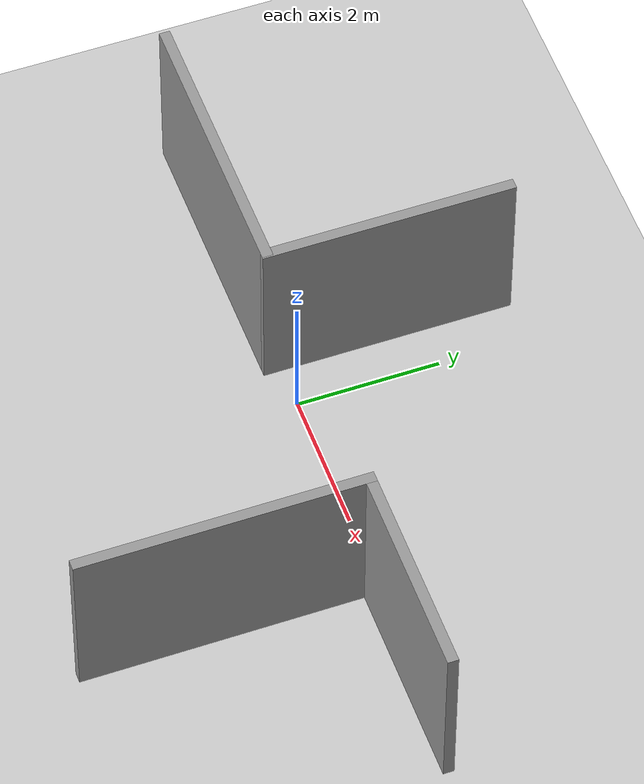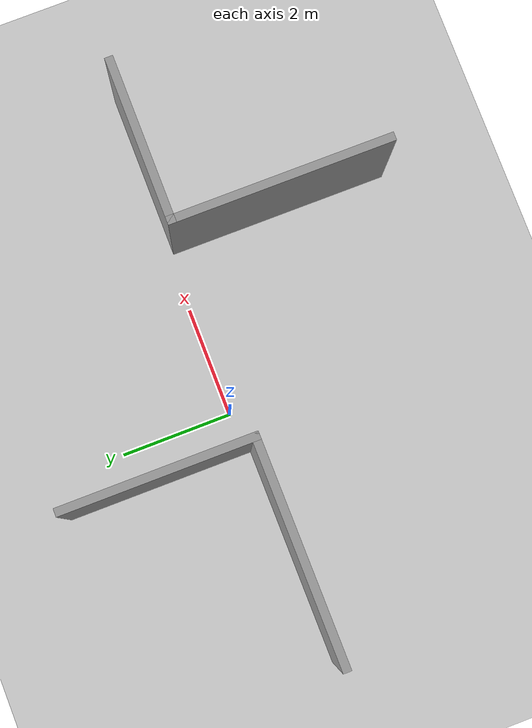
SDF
<sdf version="1.6">
 <world name="default">
  <physics name="default_physics" default="0" type="ode">
   <ode>
    <solver>
     <type>quick</type>
     <iters>100</iters>
     <sor>1</sor>
     <use_dynamic_moi_rescaling>0</use_dynamic_moi_rescaling>
    </solver>
    <constraints>
     <cfm>0</cfm>
     <erp>0.9</erp>
     <contact_max_correcting_vel>0.1</contact_max_correcting_vel>
     <contact_surface_layer>0</contact_surface_layer>
    </constraints>
   </ode>
   <real_time_update_rate>1000</real_time_update_rate>
   <max_step_size>0.001</max_step_size>
   <real_time_factor>1</real_time_factor>
  </physics>
  <scene>
   <sky><clouds><speed>12</speed></clouds></sky>
   <ambient>0.4 0.4 0.4 1</ambient>
   <background>0.25 0.25 0.25 1</background>
   <shadows>1</shadows>
  </scene>
  <model name="ground_plane">
   <static>1</static>
   <link name="link">
    <collision name="collision">
     <geometry><plane><normal>0 0 1</normal><size>100 100</size></plane></geometry>
     <surface>
      <contact><collide_bitmask>65535</collide_bitmask></contact>
      <friction><ode><mu>100</mu><mu2>50</mu2></ode></friction>
     </surface>
    </collision>
    <visual name="visual">
     <cast_shadows>0</cast_shadows>
     <geometry><plane><normal>0 0 1</normal><size>100 100</size></plane></geometry>
     <material>
      <script><uri>file://media/materials/scripts/gazebo.material</uri><name>Gazebo/Grey</name></script>
     </material>
    </visual>
   </link>
  </model>
  <light name="sun" type="directional">
   <pose>0 0 10 0 -0 0</pose>
   <diffuse>0.8 0.8 0.8 1</diffuse>
   <specular>0.2 0.2 0.2 1</specular>
   <attenuation>
    <range>1000</range>
    <constant>0.9</constant>
    <linear>0.01</linear>
    <quadratic>0.001</quadratic>
   </attenuation>
   <direction>-0.5 0.1 -0.9</direction>
  </light>
  <gravity>0 0 -9.8</gravity>
  <magnetic_field>6e-06 2.3e-05 -4.2e-05</magnetic_field>
  <atmosphere type="adiabatic"/>
  <spherical_coordinates>
   <surface_model>EARTH_WGS84</surface_model>
   <latitude_deg>0</latitude_deg>
   <longitude_deg>0</longitude_deg>
   <elevation>0</elevation>
   <heading_deg>0</heading_deg>
  </spherical_coordinates>
  <model name="Untitled">
   <pose>0.701526 -0.418712 0 0 -0 0</pose>
   <link name="Wall_16">
    <collision name="Wall_16_Collision">
     <geometry><box><size>3.5 0.15 2.5</size></box></geometry>
     <pose>0 0 1.25 0 -0 0</pose>
    </collision>
    <visual name="Wall_16_Visual">
     <pose>0 0 1.25 0 -0 0</pose>
     <geometry><box><size>3.5 0.15 2.5</size></box></geometry>
     <material>
      <script><uri>file://media/materials/scripts/gazebo.material</uri><name>Gazebo/Grey</name></script>
      <ambient>1 1 1 1</ambient>
     </material>
     <meta><layer>0</layer></meta>
    </visual>
    <pose>-1.36692 1.91416 0 0 -0 -1.5708</pose>
   </link>
   <link name="Wall_18">
    <collision name="Wall_18_Collision">
     <geometry><box><size>4.03651 0.15 2.5</size></box></geometry>
     <pose>0 0 1.25 0 -0 0</pose>
    </collision>
    <visual name="Wall_18_Visual">
     <pose>0 0 1.25 0 -0 0</pose>
     <geometry><box><size>4.03651 0.15 2.5</size></box></geometry>
     <material>
      <script><uri>file://media/materials/scripts/gazebo.material</uri><name>Gazebo/Grey</name></script>
      <ambient>1 1 1 1</ambient>
     </material>
     <meta><layer>0</layer></meta>
    </visual>
    <pose>-3.33327 0.227589 0 0 -0 -3.13564</pose>
   </link>
   <link name="Wall_6">
    <collision name="Wall_6_Collision">
     <geometry><box><size>4 0.15 2.5</size></box></geometry>
     <pose>0 0 1.25 0 -0 0</pose>
    </collision>
    <visual name="Wall_6_Visual">
     <pose>0 0 1.25 0 -0 0</pose>
     <geometry><box><size>4 0.15 2.5</size></box></geometry>
     <material>
      <script><uri>file://media/materials/scripts/gazebo.material</uri><name>Gazebo/Grey</name></script>
      <ambient>1 1 1 1</ambient>
     </material>
     <meta><layer>0</layer></meta>
    </visual>
    <pose>2.42694 -1.66416 0 0 -0 1.5708</pose>
   </link>
   <link name="Wall_8">
    <collision name="Wall_8_Collision">
     <geometry><box><size>3 0.15 2.5</size></box></geometry>
     <pose>0 0 1.25 0 -0 0</pose>
    </collision>
    <visual name="Wall_8_Visual">
     <pose>0 0 1.25 0 -0 0</pose>
     <geometry><box><size>3 0.15 2.5</size></box></geometry>
     <material>
      <script><uri>file://media/materials/scripts/gazebo.material</uri><name>Gazebo/Grey</name></script>
      <ambient>1 1 1 1</ambient>
     </material>
     <meta><layer>0</layer></meta>
    </visual>
    <pose>3.85194 0.260845 0 0 -0 0</pose>
   </link>
   <static>1</static>
  </model>
 </world>
</sdf>
